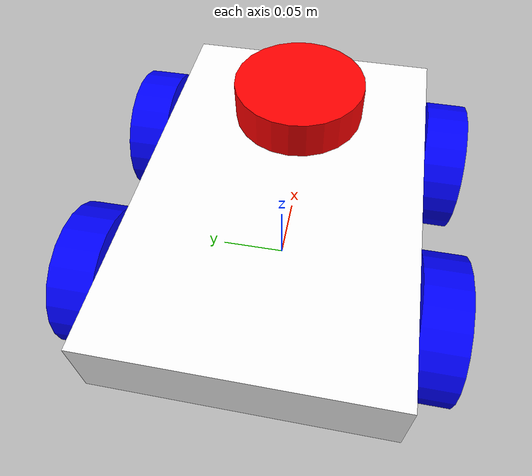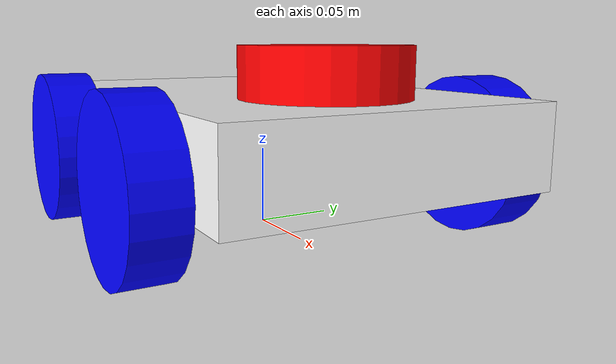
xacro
<?xml version="1.0"?>
<robot xmlns:xacro="https://www.ros.org/wiki/xacro" name="robot">

    <xacro:include filename="ros2_control.xacro"/>

    <xacro:macro name="inertial_box" params="mass x y z *origin">
        <inertial>
            <xacro:insert_block name="origin"/>
            <mass value="${mass}"/>
            <inertia ixx="${(1/12) * mass * (y*y + z*z)}" ixy="0.0" ixz="0.0" iyy="${(1/12) * mass * (x*x + z*z)}" iyz="0.0" izz="${(1/12) * mass * (x*x + y*y)}"/>
        </inertial>
    </xacro:macro>

    <xacro:macro name="inertial_cylinder" params="mass length radius *origin">
        <inertial>
            <xacro:insert_block name="origin"/>
            <mass value="${mass}" />
            <inertia ixx="${(1/12) * mass * (3*radius*radius + length*length)}" ixy="0.0" ixz="0.0"
                    iyy="${(1/12) * mass * (3*radius*radius + length*length)}" iyz="0.0"
                    izz="${(1/2) * mass * (radius*radius)}" />
        </inertial>
    </xacro:macro>

    <xacro:macro name="inertial_sphere" params="mass radius *origin">
        <inertial>
            <xacro:insert_block name="origin"/>
            <mass value="${mass}" />
            <inertia ixx="${(2/5) * mass * (radius*radius)}" ixy="0.0" ixz="0.0"
                    iyy="${(2/5) * mass * (radius*radius)}" iyz="0.0"
                    izz="${(2/5) * mass * (radius*radius)}" />
        </inertial>
    </xacro:macro>

    <material name="white">
        <color rgba="1.0 1.0 1.0 1.0"/>
    </material>

    <material name="red">
        <color rgba="1.0 0.0 0.0 1.0"/>
    </material>

    <material name="green">
        <color rgba="0.0 1.0 0.0 1.0"/>
    </material>

    <material name="blue">
        <color rgba="0.0 0.0 1.0 1.0"/>
    </material>

    <link name="base_link"></link>

    <joint name="chassis_joint" type="fixed">
        <parent link="base_link"/>
        <child link="chassis"/>
        <origin xyz="0.0 0.0 0.065" rpy="0.0 0.0 0.0"/>
    </joint>

    <link name="chassis">
        <visual>
            <origin xyz="0.0 0.0 0.0" rpy="0.0 0.0 0.0"/>
            <geometry>
                <box size="0.3 0.2 0.05"/>
            </geometry>
            <material name="white"/>
        </visual>
        <collision>
            <origin xyz="0.0 0.0 0.0" rpy="0.0 0.0 0.0"/>
            <geometry>
                <box size="0.3 0.2 0.05"/>
            </geometry>
        </collision>
        <xacro:inertial_box mass="0.5" x="0.3" y="0.2" z="0.15">
            <origin xyz="0.0 0.0 0.0" rpy="0.0 0.0 0.0"/>
        </xacro:inertial_box>
    </link>

    <joint name="left_wheel_1_joint" type="continuous">
        <parent link="base_link"/>
        <child link="left_wheel_1"/>
        <origin xyz="0.075 0.115 0.05" rpy="-${pi/2} 0.0 0.0"/>
        <axis xyz="0.0 0.0 1.0"/>

    </joint>

    <link name="left_wheel_1">
        <visual>
            <geometry>
                <cylinder radius="0.05" length="0.03"/>
            </geometry>
            <material name="blue"/>
        </visual>
        <collision>
            <geometry>
                <cylinder radius="0.05" length="0.03"/>
            </geometry>
        </collision>
        <xacro:inertial_cylinder mass="0.05" length="0.03" radius="0.05">
            <origin xyz="0.075 0.115 0.05" rpy="-${pi/2} 0.0 0.0"/>
        </xacro:inertial_cylinder>
    </link>

    <joint name="left_wheel_2_joint" type="continuous">
        <parent link="base_link"/>
        <child link="left_wheel_2"/>
        <origin xyz="-0.075 0.115 0.05" rpy="-${pi/2} 0.0 0.0"/>
        <axis xyz="0.0 0.0 1.0"/>

    </joint>

    <link name="left_wheel_2">
        <visual>
            <geometry>
                <cylinder radius="0.05" length="0.03"/>
            </geometry>
            <material name="blue"/>
        </visual>
        <collision>
            <geometry>
                <cylinder radius="0.05" length="0.03"/>
            </geometry>
        </collision>
        <xacro:inertial_cylinder mass="0.05" length="0.03" radius="0.05">
            <origin xyz="-0.075 0.115 0.05" rpy="-${pi/2} 0.0 0.0"/>
        </xacro:inertial_cylinder>
    </link>

    <joint name="right_wheel_1_joint" type="continuous">
        <parent link="base_link"/>
        <child link="right_wheel_1"/>
        <origin xyz="0.075 -0.115 0.05" rpy="${pi/2} 0.0 0.0"/>
        <axis xyz="0.0 0.0 -1.0"/>

    </joint>

    <link name="right_wheel_1">
        <visual>
            <geometry>
                <cylinder radius="0.05" length="0.03"/>
            </geometry>
            <material name="blue"/>
        </visual>
        <collision>
            <geometry>
                <cylinder radius="0.05" length="0.03"/>
            </geometry>
        </collision>
        <xacro:inertial_cylinder mass="0.05" length="0.03" radius="0.05">
            <origin xyz="0.075 -0.115 0.05" rpy="${pi/2} 0.0 0.0"/>
        </xacro:inertial_cylinder>
    </link>

    <joint name="right_wheel_2_joint" type="continuous">
        <parent link="base_link"/>
        <child link="right_wheel_2"/>
        <origin xyz="-0.075 -0.115 0.05" rpy="${pi/2} 0.0 0.0"/>
        <axis xyz="0.0 0.0 -1.0"/>

    </joint>

    <link name="right_wheel_2">
        <visual>
            <geometry>
                <cylinder radius="0.05" length="0.03"/>
            </geometry>
            <material name="blue"/>
        </visual>
        <collision>
            <geometry>
                <cylinder radius="0.05" length="0.03"/>
            </geometry>
        </collision>
        <xacro:inertial_cylinder mass="0.05" length="0.03" radius="0.05">
            <origin xyz="-0.075 -0.115 0.05" rpy="${pi/2} 0.0 0.0"/>
        </xacro:inertial_cylinder>
    </link>

    <joint name="lidar_link" type="fixed">
        <parent link="base_link"/>
        <child link="lidar"/>
        <origin xyz="0.075 0.0 0.105" rpy="0.0 0.0 0.0"/>
    </joint>

    <link name="lidar">
        <visual>
            <geometry>
                <cylinder radius="0.05" length="0.03"/>
            </geometry>
            <material name="red"/>
        </visual>
        <collision>
            <geometry>
                <cylinder radius="0.05" length="0.03"/>
            </geometry>
        </collision>
        <xacro:inertial_cylinder mass="0.05" length="0.03" radius="0.05">
            <origin xyz="0.075 0.0 0.105" rpy="0.0 0.0 0.0"/>
        </xacro:inertial_cylinder>

    </link>

    <gazebo reference="lidar">
        <sensor name="lidar" type="gpu_lidar">
            <pose relative_to="lidar_link"> 0 0 0 0 0 0 </pose>
            <visualize>true</visualize>
            <update_rate>10</update_rate>
            <always_on>1</always_on>
            <lidar>
                <scan>
                    <horizontal>
                        <samples>360</samples>
                        <min_angle>-3.14</min_angle>
                        <max_angle>3.14</max_angle>
                    </horizontal>
                    <vertical>
                        <samples>1</samples>
                        <resolution>0.01</resolution>
                        <min_angle>0</min_angle>
                        <max_angle>0</max_angle>
                    </vertical>
                </scan>
                <range>
                    <min>0.3</min>
                    <max>100.0</max>
                    <resolution>0.01</resolution>
                </range>
            </lidar>
            <topic>/scan</topic>
            <frame_id>lidar_link</frame_id>

        </sensor>
    </gazebo>

    <gazebo>

        <plugin
            filename="gz-sim-sensors-system"
            name="gz::sim::systems::Sensors">
            <render_engine>ogre</render_engine>
        </plugin>
        <plugin name="gz::sim::systems::DiffDrive" filename="gz-sim-diff-drive-system">
            <left_joint>left_wheel_1_joint</left_joint>
            <right_joint>right_wheel_1_joint</right_joint>
            <left_joint>left_wheel_2_joint</left_joint>
            <right_joint>right_wheel_2_joint</right_joint>

            <wheel_separation>0.230</wheel_separation>
            <wheel_radius>0.05</wheel_radius>

            <topic>cmd_vel</topic>

            <frame_id>odom</frame_id>
            <child_frame_id>base_link</child_frame_id>
            <odom_topic>odom</odom_topic>
            <odom_publish_frequency>30</odom_publish_frequency>
            <publish_odom>true</publish_odom>
            <publish_odom_tf>true</publish_odom_tf>
            <tf_topic>/tf</tf_topic>
        </plugin>

        <plugin name="gz::sim::systems::JointStatePublisher" filename="gz-sim-joint-state-publisher-system">
            <topic>joint_states</topic>
            <joint_name>left_wheel_1_joint</joint_name>
            <joint_name>left_wheel_2_joint</joint_name>
            <joint_name>right_wheel_1_joint</joint_name>
            <joint_name>right_wheel_2_joint</joint_name>

        </plugin>

        <!-- Moving Forward-->
        <plugin filename="gz-sim-triggered-publisher-system"
                name="gz::sim::systems::TriggeredPublisher">
            <input type="gz.msgs.Int32" topic="/keyboard/keypress">
                <match field="data">16777235</match>
            </input>
            <output type="gz.msgs.Twist" topic="/cmd_vel">
                linear: {x: 0.5}, angular: {z: 0.0}
            </output>
        </plugin>

        <!-- Moving Backward-->
        <plugin filename="gz-sim-triggered-publisher-system"
                name="gz::sim::systems::TriggeredPublisher">
            <input type="gz.msgs.Int32" topic="/keyboard/keypress">
                <match field="data">16777237</match>
            </input>
            <output type="gz.msgs.Twist" topic="/cmd_vel">
                linear: {x: -0.5}, angular: {z: 0.0}
            </output>
        </plugin>

        <!-- Moving Left-->
        <plugin filename="gz-sim-triggered-publisher-system"
                name="gz::sim::systems::TriggeredPublisher">
            <input type="gz.msgs.Int32" topic="/keyboard/keypress">
                <match field="data">16777234</match>
            </input>
            <output type="gz.msgs.Twist" topic="/cmd_vel">
                linear: {x: 0.0}, angular: {z: 0.5}
            </output>
        </plugin>

        <!--Moving Right-->
        <plugin filename="gz-sim-triggered-publisher-system"
                name="gz::sim::systems::TriggeredPublisher">
            <input type="gz.msgs.Int32" topic="/keyboard/keypress">
                <match field="data">16777236</match>
            </input>
            <output type="gz.msgs.Twist" topic="/cmd_vel">
                linear: {x: 0.0}, angular: {z: -0.5}
            </output>
        </plugin>
    </gazebo>
</robot>
